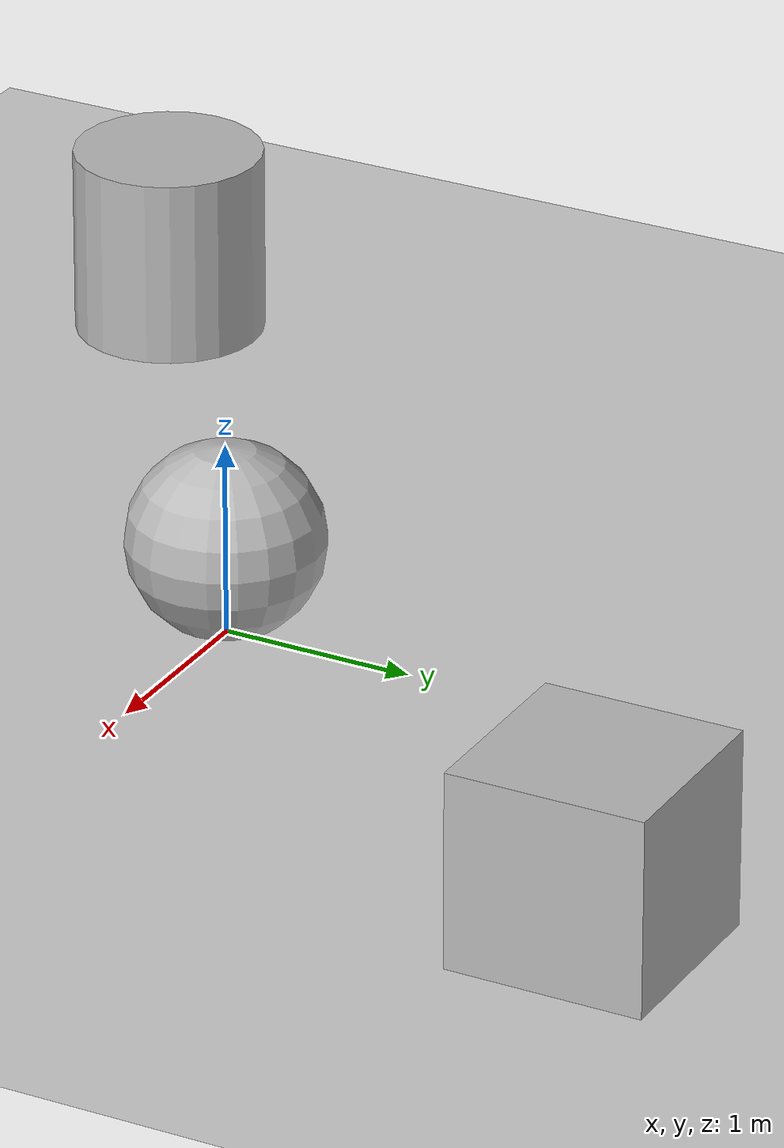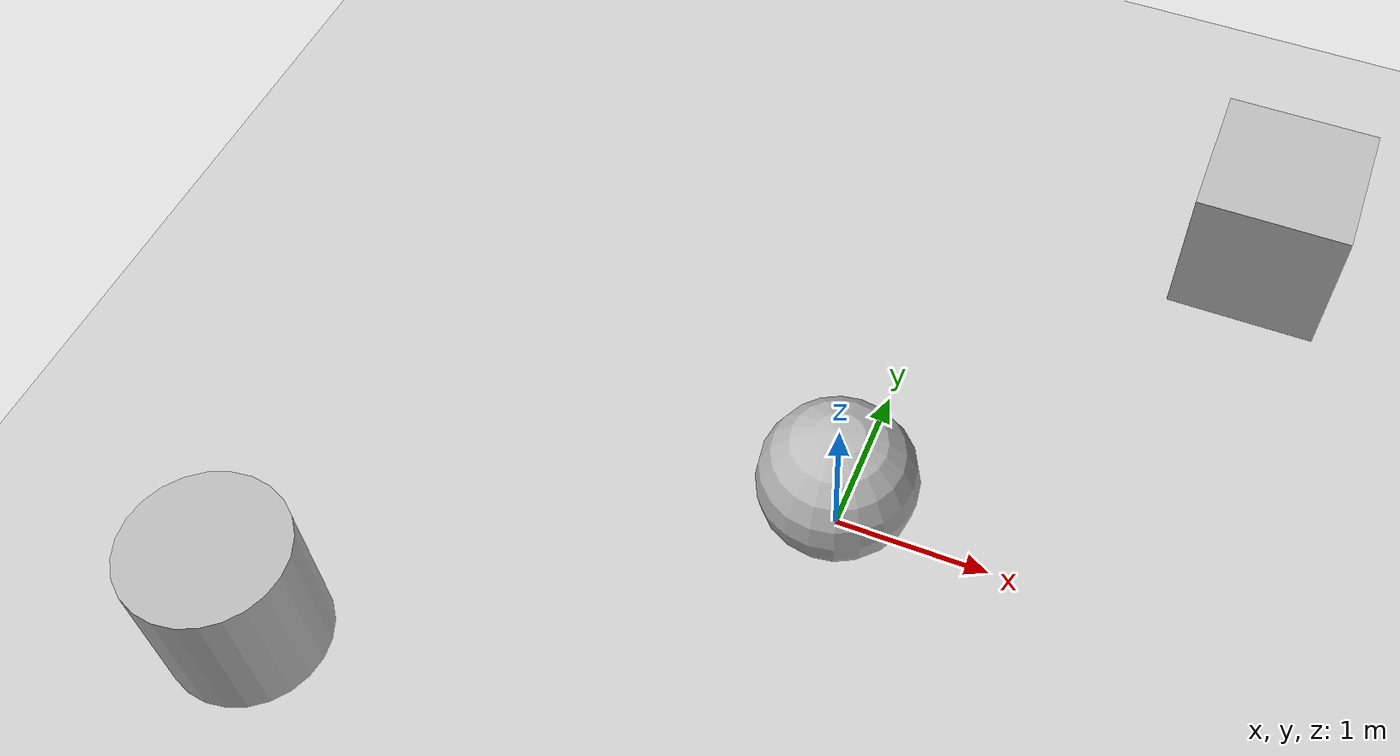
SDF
<?xml version="1.0" ?>
<sdf version="1.6">
  <world name="static_obstacles">
    <include>
      <uri>model://sun</uri>
    </include>
    <include>
      <uri>model://ground_plane</uri>
    </include>

    <model name="box1">
      <static>true</static>
      <pose>2 3 0.5 0 0 0</pose>
      <link name="link">
        <collision name="collision">
          <geometry>
            <box>
              <size>1 1 1</size>
            </box>
          </geometry>
        </collision>
        <visual name="visual">
          <geometry>
            <box>
              <size>1 1 1</size>
            </box>
          </geometry>
        </visual>
      </link>
    </model>

    <model name="cylinder1">
      <static>true</static>
      <pose>-3 -2 0.5 0 0 0</pose>
      <link name="link">
        <collision name="collision">
          <geometry>
            <cylinder>
              <radius>0.5</radius>
              <length>1.0</length>
            </cylinder>
          </geometry>
        </collision>
        <visual name="visual">
          <geometry>
            <cylinder>
              <radius>0.5</radius>
              <length>1.0</length>
            </cylinder>
          </geometry>
        </visual>
      </link>
    </model>

    <model name="sphere1">
      <static>true</static>
      <pose>0 0 0.5 0 0 0</pose>
      <link name="link">
        <collision name="collision">
          <geometry>
            <sphere>
              <radius>0.5</radius>
            </sphere>
          </geometry>
        </collision>
        <visual name="visual">
          <geometry>
            <sphere>
              <radius>0.5</radius>
            </sphere>
          </geometry>
        </visual>
      </link>
    </model>
  </world>
</sdf>
